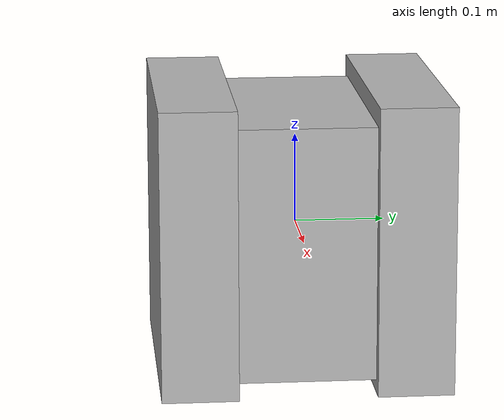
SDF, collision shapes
<sdf version='1.11'>
  <model name='target'>
    <link name='target/base_link'>
      <inertial>
        <pose>0 0 0 0 0 0</pose>
        <mass>9.0876999999999999</mass>
        <inertia>
          <ixx>0.1454</ixx>
          <ixy>0</ixy>
          <ixz>0</ixz>
          <iyy>0.1366</iyy>
          <iyz>0</iyz>
          <izz>0.15939999999999999</izz>
        </inertia>
      </inertial>
      <collision name='target/base_link_fixed_joint_lump__body_collision_collision'>
        <pose>-0.000794 0.00022900000000000001 -0.0039069999999999999 0 0 0</pose>
        <geometry>
          <box>
            <size>0.29051300000000002 0.15194199999999999 0.28112900000000002</size>
          </box>
        </geometry>
      </collision>
      <collision name='target/base_link_fixed_joint_lump__pmc_port_collision_collision_1'>
        <pose>0 -0.117546 0 0 0 0</pose>
        <geometry>
          <box>
            <size>0.31919900000000001 0.083961999999999995 0.31958799999999998</size>
          </box>
        </geometry>
      </collision>
      <collision name='target/base_link_fixed_joint_lump__pmc_stbd_collision_collision_2'>
        <pose>0 0.117546 0 0 0 0</pose>
        <geometry>
          <box>
            <size>0.31919900000000001 0.083961999999999995 0.31958799999999998</size>
          </box>
        </geometry>
      </collision>
      <visual name='target/base_link_fixed_joint_lump__body_visual_visual'>
        <pose>0 0 0 0 0 0</pose>
        <geometry>
          <mesh>
            <scale>1 1 1</scale>
            <uri>model://astrobee_description/models/astrobee_freeflyer/meshes/body.dae</uri>
          </mesh>
        </geometry>
      </visual>
      <visual name='target/base_link_fixed_joint_lump__pmc_port_visual_visual_1'>
        <pose>0 0 0 0 0 0</pose>
        <geometry>
          <mesh>
            <scale>1 1 1</scale>
            <uri>model://astrobee_description/models/astrobee_freeflyer/meshes/pmc.dae</uri>
          </mesh>
        </geometry>
      </visual>
      <visual name='target/base_link_fixed_joint_lump__pmc_port_bumper_visual_visual_2'>
        <pose>0 0 0 0 0 0</pose>
        <geometry>
          <mesh>
            <scale>1 1 1</scale>
            <uri>model://astrobee_description/models/astrobee_freeflyer/meshes/pmc_bumper.dae</uri>
          </mesh>
        </geometry>
      </visual>
      <visual name='target/base_link_fixed_joint_lump__pmc_port_skin_visual_visual_3'>
        <pose>0 0 0 0 0 0</pose>
        <geometry>
          <mesh>
            <scale>1 1 1</scale>
            <uri>model://astrobee_description/models/astrobee_freeflyer/meshes/pmc_skin_.dae</uri>
          </mesh>
        </geometry>
      </visual>
      <visual name='target/base_link_fixed_joint_lump__pmc_stbd_visual_visual_4'>
        <pose>0 0 0 3.1415926535897931 0.001592653589793114 -0.001592653589793114</pose>
        <geometry>
          <mesh>
            <scale>1 1 1</scale>
            <uri>model://astrobee_description/models/astrobee_freeflyer/meshes/pmc.dae</uri>
          </mesh>
        </geometry>
      </visual>
      <visual name='target/base_link_fixed_joint_lump__pmc_stbd_bumper_visual_visual_5'>
        <pose>0 0 0 3.1415926535897931 0.001592653589793114 -0.001592653589793114</pose>
        <geometry>
          <mesh>
            <scale>1 1 1</scale>
            <uri>model://astrobee_description/models/astrobee_freeflyer/meshes/pmc_bumper.dae</uri>
          </mesh>
        </geometry>
      </visual>
      <visual name='target/base_link_fixed_joint_lump__pmc_stbd_skin_visual_visual_6'>
        <pose>0 0 0 3.1415926535897931 0.001592653589793114 -0.001592653589793114</pose>
        <geometry>
          <mesh>
            <scale>1 1 1</scale>
            <uri>model://astrobee_description/models/astrobee_freeflyer/meshes/pmc_skin_.dae</uri>
          </mesh>
        </geometry>
      </visual>
    </link>
    <frame name='inertial_joint' attached_to='target/base_link'>
      <pose>0 0 0 0 0 0</pose>
    </frame>
    <frame name='inertial_link' attached_to='inertial_joint'>
      <pose>0 0 0 0 0 0</pose>
    </frame>

    <plugin
      filename="gz-sim-velocity-control-system"
      name="gz::sim::systems::VelocityControl">
      <topic>/target/cmd_vel</topic>

    </plugin>

  </model>
</sdf>
